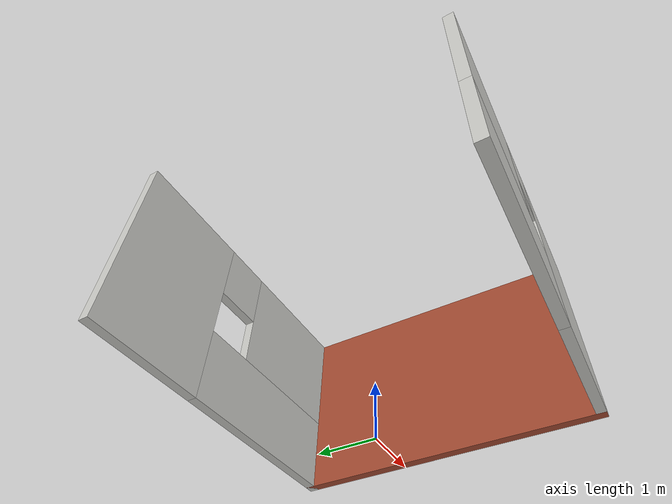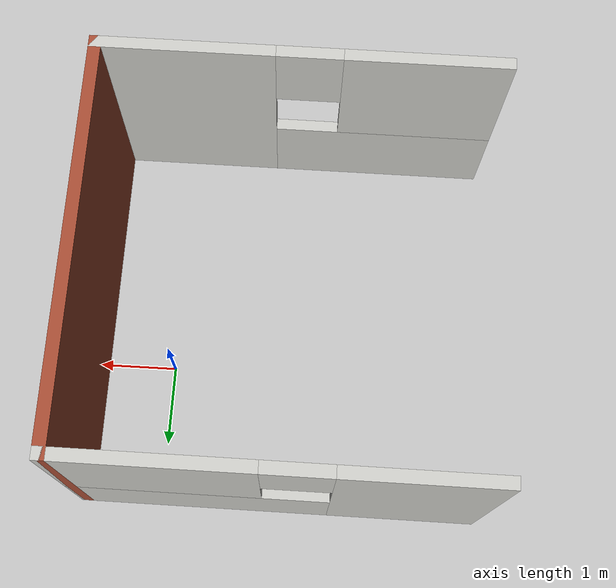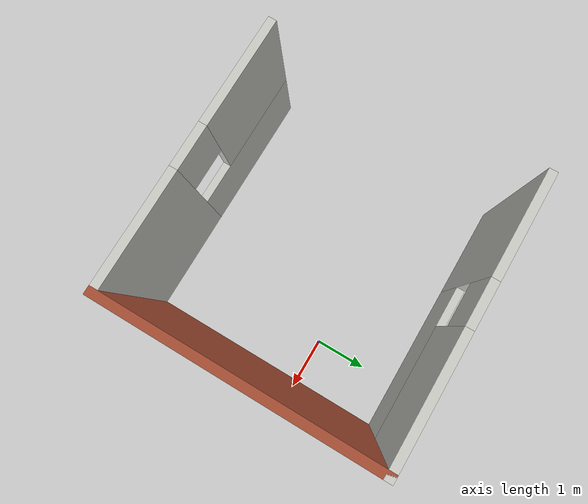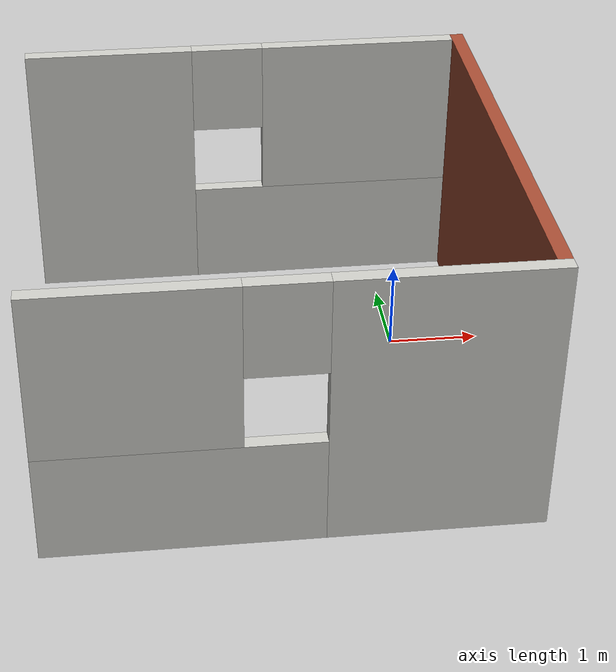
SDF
<?xml version='1.0'?>
<sdf version='1.6'>
  <model name='house_5x5_open_color'>
    <pose frame=''>-1.473 -0.702 0 0 -0 0</pose>
    <link name='Wall_0'>
      <pose frame=''>-0 2.425 0 0 -0 0</pose>
      <visual name='Wall_0_Visual_0'>
        <pose frame=''>-1.56747 0 1.5 0 -0 0</pose>
        <geometry>
          <box>
            <size>1.86506 0.15 3</size>
          </box>
        </geometry>
        <material>
          <script>
            <uri>file://media/materials/scripts/gazebo.material</uri>
            <name>Gazebo/CeilingTiled</name>
          </script>
          <ambient>0.760784 0.662745 0.627451 1</ambient>
        </material>
        <meta>
          <layer>0</layer>
        </meta>
      </visual>
      <collision name='Wall_0_Collision_0'>
        <geometry>
          <box>
            <size>1.86506 0.15 3</size>
          </box>
        </geometry>
        <pose frame=''>-1.56747 0 1.5 0 -0 0</pose>
      </collision>
      <visual name='Wall_0_Visual_1'>
        <pose frame=''>0.93253 0 0.6 0 -0 0</pose>
        <geometry>
          <box>
            <size>3.13494 0.15 1.2</size>
          </box>
        </geometry>
        <material>
          <script>
            <uri>file://media/materials/scripts/gazebo.material</uri>
            <name>Gazebo/CeilingTiled</name>
          </script>
          <ambient>0.760784 0.662745 0.627451 1</ambient>
        </material>
        <meta>
          <layer>0</layer>
        </meta>
      </visual>
      <collision name='Wall_0_Collision_1'>
        <geometry>
          <box>
            <size>3.13494 0.15 1.2</size>
          </box>
        </geometry>
        <pose frame=''>0.93253 0 0.6 0 -0 0</pose>
      </collision>
      <visual name='Wall_0_Visual_2'>
        <pose frame=''>1.33253 0 2.1 0 -0 0</pose>
        <geometry>
          <box>
            <size>2.33494 0.15 1.8</size>
          </box>
        </geometry>
        <material>
          <script>
            <uri>file://media/materials/scripts/gazebo.material</uri>
            <name>Gazebo/CeilingTiled</name>
          </script>
          <ambient>0.760784 0.662745 0.627451 1</ambient>
        </material>
        <meta>
          <layer>0</layer>
        </meta>
      </visual>
      <collision name='Wall_0_Collision_2'>
        <geometry>
          <box>
            <size>2.33494 0.15 1.8</size>
          </box>
        </geometry>
        <pose frame=''>1.33253 0 2.1 0 -0 0</pose>
      </collision>
      <visual name='Wall_0_Visual_3'>
        <pose frame=''>-0.23494 0 2.5 0 -0 0</pose>
        <geometry>
          <box>
            <size>0.8 0.15 1</size>
          </box>
        </geometry>
        <material>
          <script>
            <uri>file://media/materials/scripts/gazebo.material</uri>
            <name>Gazebo/CeilingTiled</name>
          </script>
          <ambient>0.760784 0.662745 0.627451 1</ambient>
        </material>
        <meta>
          <layer>0</layer>
        </meta>
      </visual>
      <collision name='Wall_0_Collision_3'>
        <geometry>
          <box>
            <size>0.8 0.15 1</size>
          </box>
        </geometry>
        <pose frame=''>-0.23494 0 2.5 0 -0 0</pose>
      </collision>
    </link>
    <link name='Wall_1'>
      <collision name='Wall_1_Collision'>
        <geometry>
          <box>
            <size>5 0.15 3</size>
          </box>
        </geometry>
        <pose frame=''>0 0 1.5 0 -0 0</pose>
      </collision>
      <visual name='Wall_1_Visual'>
        <pose frame=''>0 0 1.5 0 -0 0</pose>
        <geometry>
          <box>
            <size>5 0.15 3</size>
          </box>
        </geometry>
        <material>
          <script>
            <uri>file://media/materials/scripts/gazebo.material</uri>
            <name>Gazebo/Bricks</name>
          </script>
          <ambient>1 1 1 1</ambient>
        </material>
        <meta>
          <layer>0</layer>
        </meta>
      </visual>
      <pose frame=''>2.425 -0 0 0 -0 -1.5708</pose>
    </link>
    <link name='Wall_2'>
      <pose frame=''>-0 -2.425 0 0 -0 3.14159</pose>
      <visual name='Wall_2_Visual_0'>
        <pose frame=''>-1.40097 0 1.5 0 -0 0</pose>
        <geometry>
          <box>
            <size>2.19806 0.15 3</size>
          </box>
        </geometry>
        <material>
          <script>
            <uri>file://media/materials/scripts/gazebo.material</uri>
            <name>Gazebo/CeilingTiled</name>
          </script>
          <ambient>0.921569 0.807843 0.615686 1</ambient>
        </material>
        <meta>
          <layer>0</layer>
        </meta>
      </visual>
      <collision name='Wall_2_Collision_0'>
        <geometry>
          <box>
            <size>2.19806 0.15 3</size>
          </box>
        </geometry>
        <pose frame=''>-1.40097 0 1.5 0 -0 0</pose>
      </collision>
      <visual name='Wall_2_Visual_1'>
        <pose frame=''>1.09903 0 0.6 0 -0 0</pose>
        <geometry>
          <box>
            <size>2.80194 0.15 1.2</size>
          </box>
        </geometry>
        <material>
          <script>
            <uri>file://media/materials/scripts/gazebo.material</uri>
            <name>Gazebo/CeilingTiled</name>
          </script>
          <ambient>0.921569 0.807843 0.615686 1</ambient>
        </material>
        <meta>
          <layer>0</layer>
        </meta>
      </visual>
      <collision name='Wall_2_Collision_1'>
        <geometry>
          <box>
            <size>2.80194 0.15 1.2</size>
          </box>
        </geometry>
        <pose frame=''>1.09903 0 0.6 0 -0 0</pose>
      </collision>
      <visual name='Wall_2_Visual_2'>
        <pose frame=''>1.49903 0 2.1 0 -0 0</pose>
        <geometry>
          <box>
            <size>2.00194 0.15 1.8</size>
          </box>
        </geometry>
        <material>
          <script>
            <uri>file://media/materials/scripts/gazebo.material</uri>
            <name>Gazebo/CeilingTiled</name>
          </script>
          <ambient>0.921569 0.807843 0.615686 1</ambient>
        </material>
        <meta>
          <layer>0</layer>
        </meta>
      </visual>
      <collision name='Wall_2_Collision_2'>
        <geometry>
          <box>
            <size>2.00194 0.15 1.8</size>
          </box>
        </geometry>
        <pose frame=''>1.49903 0 2.1 0 -0 0</pose>
      </collision>
      <visual name='Wall_2_Visual_3'>
        <pose frame=''>0.098061 0 2.5 0 -0 0</pose>
        <geometry>
          <box>
            <size>0.8 0.15 1</size>
          </box>
        </geometry>
        <material>
          <script>
            <uri>file://media/materials/scripts/gazebo.material</uri>
            <name>Gazebo/CeilingTiled</name>
          </script>
          <ambient>0.921569 0.807843 0.615686 1</ambient>
        </material>
        <meta>
          <layer>0</layer>
        </meta>
      </visual>
      <collision name='Wall_2_Collision_3'>
        <geometry>
          <box>
            <size>0.8 0.15 1</size>
          </box>
        </geometry>
        <pose frame=''>0.098061 0 2.5 0 -0 0</pose>
      </collision>
    </link>
    <static>1</static>
  </model>
</sdf>
